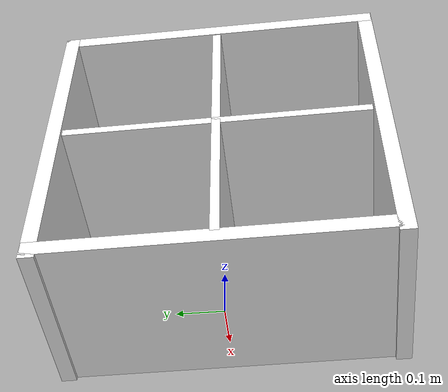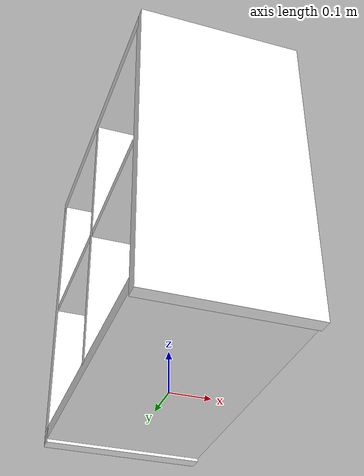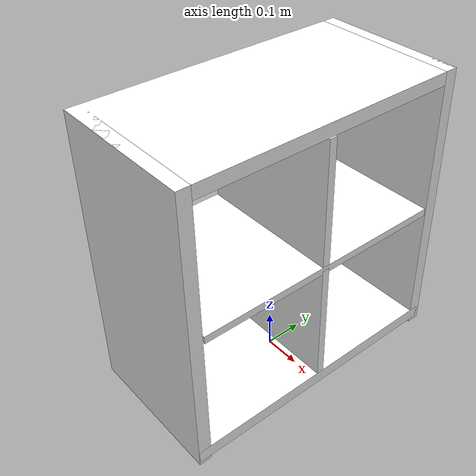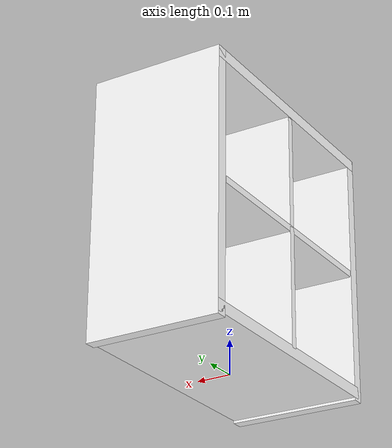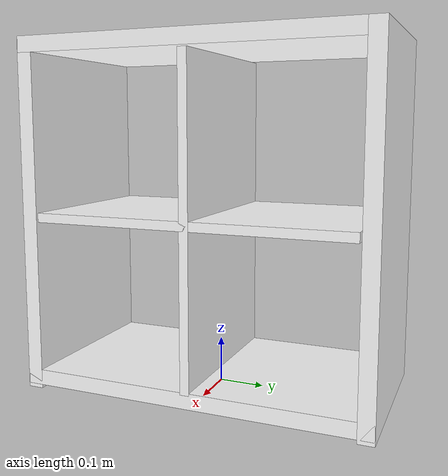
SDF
<?xml version="1.0"?>
<sdf version="1.6">
  <model name="rwc2016/cabinet_open_small">
    <link name="1_link">
      <collision name="1_col">
        <geometry>
          <box>
            <size>0.393 0.034 0.764</size>
          </box>
        </geometry>
      </collision>
      <visual name="1_vis">
        <geometry>
          <box>
            <size>0.393 0.034 0.764</size>
          </box>
        </geometry>
        <material>
          <ambient>1.0 1.0 1.0 1</ambient>
        </material>
      </visual>
      <pose>0 -0.366 0.382 0 0 0</pose>
    </link>
    <link name="2_link">
      <collision name="2_col">
        <geometry>
          <box>
            <size>0.393 0.034 0.764</size>
          </box>
        </geometry>
      </collision>
      <visual name="2_vis">
        <geometry>
          <box>
            <size>0.393 0.034 0.764</size>
          </box>
        </geometry>
        <material>
          <ambient>1.0 1.0 1.0 1</ambient>
        </material>
      </visual>
      <pose>0 0.366 0.382 0 0 0</pose>
    </link>
    <link name="3_link">
      <collision name="3_col">
        <geometry>
          <box>
            <size>0.393 0.764 0.034</size>
          </box>
        </geometry>
      </collision>
      <visual name="3_vis">
        <geometry>
          <box>
            <size>0.393 0.764 0.034</size>
          </box>
        </geometry>
        <material>
          <ambient>1.0 1.0 1.0 1</ambient>
        </material>
      </visual>
      <pose>0 0 0.747 0 0 0</pose>
    </link>
    <link name="4_link">
      <collision name="4_col">
        <geometry>
          <box>
            <size>0.393 0.764 0.034</size>
          </box>
        </geometry>
      </collision>
      <visual name="4_vis">
        <geometry>
          <box>
            <size>0.393 0.764 0.034</size>
          </box>
        </geometry>
        <material>
          <ambient>1.0 1.0 1.0 1</ambient>
        </material>
      </visual>
      <pose>0 0 0.025 0 0 0</pose>
    </link>
    <link name="5_link">
      <collision name="5_col">
        <geometry>
          <box>
            <size>0.393 0.69 0.02</size>
          </box>
        </geometry>
      </collision>
      <visual name="5_vis">
        <geometry>
          <box>
            <size>0.393 0.69 0.02</size>
          </box>
        </geometry>
        <material>
          <ambient>1.0 1.0 1.0 1</ambient>
        </material>
      </visual>
      <pose>0 0 0.382 0 0 0</pose>
    </link>
    <link name="6_link">
      <collision name="6_col">
        <geometry>
          <box>
            <size>0.393 0.02 0.69</size>
          </box>
        </geometry>
      </collision>
      <visual name="6_vis">
        <geometry>
          <box>
            <size>0.393 0.02 0.69</size>
          </box>
        </geometry>
        <material>
          <ambient>1.0 1.0 1.0 1</ambient>
        </material>
      </visual>
      <pose>0 0 0.382 0 0 0</pose>
    </link>
    <link name="in_front_of">
      <virtual_volume name="in_front_of_vv">
        <geometry>
          <box>
            <size>0.5 0.79 0</size>
          </box>
        </geometry>
        <pose>0.45 0.0 0.0 0 0 0</pose>
      </virtual_volume>
    </link>
    <link name="on_top_of">
      <virtual_volume name="on_top_of_vv">
        <geometry>
          <box>
            <size>0.34 0.74 0.425</size>
          </box>
        </geometry>
        <pose>0.0 0.0 0.9875 0 0 0</pose>
      </virtual_volume>
    </link>
    <static>true</static>
  </model>
</sdf>
